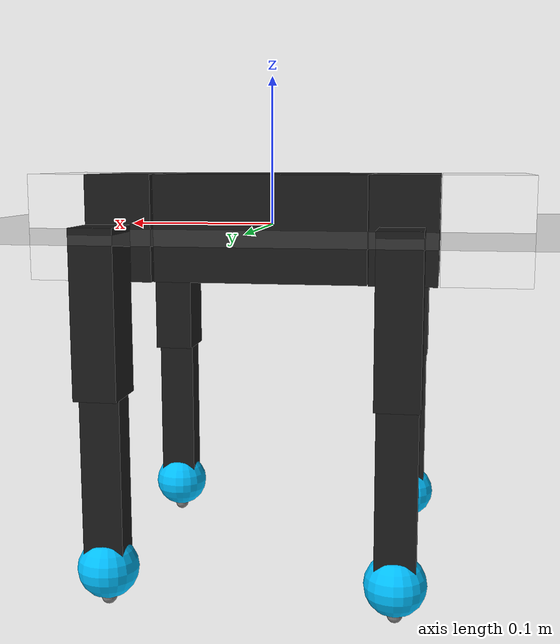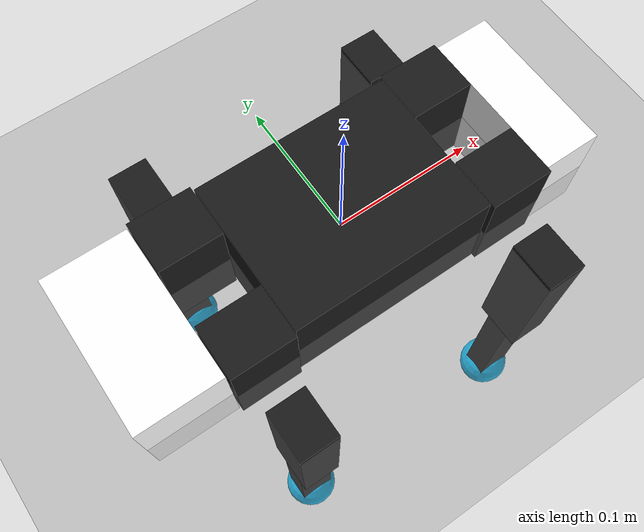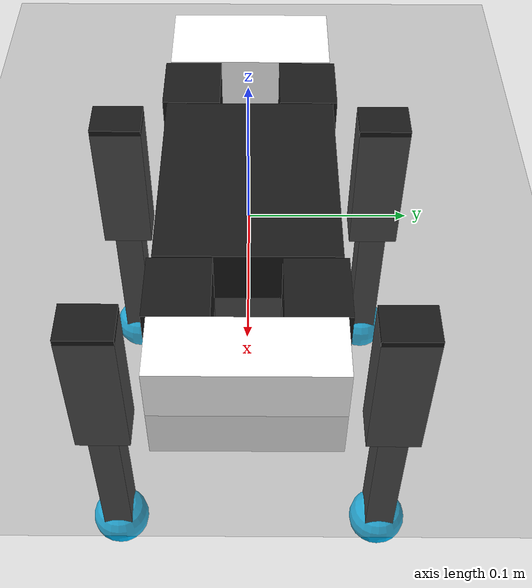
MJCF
<!-- Generated by simulation/generate_scenes.py from app/static/spot_micro.urdf.xacro; do not edit.
     Servo stiffness and torque, joint damping and replaced inertia tensors are estimates. -->
<mujoco model="spot_micro_rviz">
  <compiler angle="radian" meshdir="meshes/"/>

  <worldbody>
    <geom name="floor" size="0 0 0.05" type="plane"/>
    <body name="base_link">
      <inertial pos="0 0 0" mass="2.8" diaginertia="0.007168 0.007168 0.007168"/>
      <joint name="root" type="free"/>
      <geom size="0.07 0.055 0.035" type="box" contype="0" rgba="0.1 0.1 0.1 1"/>
      <site name="imu" pos="0 0 0"/>
      <body name="rear_link">
        <inertial pos="0 0 0" mass="0.2" diaginertia="7.2e-05 7.2e-05 7.2e-05"/>
        <geom size="0.02 0.055 0.035" pos="0.135 0 0" type="box" contype="0" rgba="1 1 1 1"/>
      </body>
      <body name="front_link">
        <inertial pos="0 0 0" mass="0.2" diaginertia="7.2e-05 7.2e-05 7.2e-05"/>
        <geom size="0.029 0.055 0.035" pos="-0.145 0 0" type="box" contype="0" rgba="1 1 1 1"/>
      </body>
      <body name="front_left_shoulder_link" pos="0.093 0.039 0">
        <inertial pos="0 0 0" mass="0.1" diaginertia="3.6e-05 3.6e-05 3.6e-05"/>
        <joint name="front_left_shoulder" pos="0 0 0" axis="1 0 0" range="-0.548 0.548" actuatorfrcrange="-1000 1000" armature="0.01" damping="0.1" frictionloss="0.5"/>
        <geom size="0.022 0.019 0.035" type="box" contype="0" rgba="0.1 0.1 0.1 1"/>
        <body name="front_left_leg_link" pos="0 0.055 0">
          <inertial pos="0 0 0" mass="0.15" diaginertia="5.4e-05 5.4e-05 5.4e-05"/>
          <joint name="front_left_leg" pos="0 0 0" axis="0 1 0" range="-2.666 1.548" actuatorfrcrange="-1000 1000" armature="0.01" damping="0.1"/>
          <geom size="0.014 0.018 0.05375" pos="0 0 -0.05" type="box" contype="0" rgba="0.1 0.1 0.1 1"/>
          <body name="front_left_leg_link_cover"/>
          <body name="front_left_foot_link" pos="0 0 -0.1075">
            <inertial pos="0 0 0" mass="0.1" diaginertia="3.6e-05 3.6e-05 3.6e-05"/>
            <joint name="front_left_foot" pos="0 0 0" axis="0 1 0" range="-2.6 0.1" actuatorfrcrange="-1000 1000" armature="0.01" damping="0.1" frictionloss="0.5"/>
            <geom size="0.013 0.01 0.065" pos="0 0 -0.05" type="box" contype="0" rgba="0.1 0.1 0.1 1"/>
            <body name="front_left_toe_link" pos="0 0 -0.13">
              <inertial pos="0 0 0" mass="0.05" diaginertia="1.8e-05 1.8e-05 1.8e-05"/>
              <geom size="0.02" pos="0 0 0.02" contype="0" rgba="0 0.75 1 1"/>
              <site name="foot_fl" pos="0 0 0"/>
            </body>
          </body>
        </body>
      </body>
      <body name="front_right_shoulder_link" pos="0.093 -0.039 0">
        <inertial pos="0 0 0" mass="0.1" diaginertia="3.6e-05 3.6e-05 3.6e-05"/>
        <joint name="front_right_shoulder" pos="0 0 0" axis="1 0 0" range="-0.548 0.548" actuatorfrcrange="-1000 1000" armature="0.01" damping="0.1" frictionloss="0.5"/>
        <geom size="0.022 0.019 0.035" type="box" contype="0" rgba="0.1 0.1 0.1 1"/>
        <body name="front_right_leg_link" pos="0 -0.055 0">
          <inertial pos="0 0 0" mass="0.15" diaginertia="5.4e-05 5.4e-05 5.4e-05"/>
          <joint name="front_right_leg" pos="0 0 0" axis="0 1 0" range="-2.666 1.548" actuatorfrcrange="-1000 1000" armature="0.01" damping="0.1"/>
          <geom size="0.014 0.018 0.05375" pos="0 0 -0.05" type="box" contype="0" rgba="0.1 0.1 0.1 1"/>
          <body name="front_right_leg_link_cover"/>
          <body name="front_right_foot_link" pos="0 0 -0.1075">
            <inertial pos="0 0 0" mass="0.1" diaginertia="3.6e-05 3.6e-05 3.6e-05"/>
            <joint name="front_right_foot" pos="0 0 0" axis="0 1 0" range="-2.6 0.1" actuatorfrcrange="-1000 1000" armature="0.01" damping="0.1" frictionloss="0.5"/>
            <geom size="0.013 0.01 0.065" pos="0 0 -0.05" type="box" contype="0" rgba="0.1 0.1 0.1 1"/>
            <body name="front_right_toe_link" pos="0 0 -0.13">
              <inertial pos="0 0 0" mass="0.05" diaginertia="1.8e-05 1.8e-05 1.8e-05"/>
              <geom size="0.02" pos="0 0 0.02" contype="0" rgba="0 0.75 1 1"/>
              <site name="foot_fr" pos="0 0 0"/>
            </body>
          </body>
        </body>
      </body>
      <body name="rear_left_shoulder_link" pos="-0.093 0.039 0">
        <inertial pos="0 0 0" mass="0.1" diaginertia="3.6e-05 3.6e-05 3.6e-05"/>
        <joint name="rear_left_shoulder" pos="0 0 0" axis="1 0 0" range="-0.548 0.548" actuatorfrcrange="-1000 1000" armature="0.01" damping="0.1" frictionloss="0.5"/>
        <geom size="0.022 0.019 0.035" type="box" contype="0" rgba="0.1 0.1 0.1 1"/>
        <body name="rear_left_leg_link" pos="0 0.055 0">
          <inertial pos="0 0 0" mass="0.15" diaginertia="5.4e-05 5.4e-05 5.4e-05"/>
          <joint name="rear_left_leg" pos="0 0 0" axis="0 1 0" range="-2.666 1.548" actuatorfrcrange="-1000 1000" armature="0.01" damping="0.1"/>
          <geom size="0.014 0.018 0.05375" pos="0 0 -0.05" type="box" contype="0" rgba="0.1 0.1 0.1 1"/>
          <body name="rear_left_leg_link_cover"/>
          <body name="rear_left_foot_link" pos="0 0 -0.1075">
            <inertial pos="0 0 0" mass="0.1" diaginertia="3.6e-05 3.6e-05 3.6e-05"/>
            <joint name="rear_left_foot" pos="0 0 0" axis="0 1 0" range="-2.6 0.1" actuatorfrcrange="-1000 1000" armature="0.01" damping="0.1" frictionloss="0.5"/>
            <geom size="0.013 0.01 0.065" pos="0 0 -0.05" type="box" contype="0" rgba="0.1 0.1 0.1 1"/>
            <body name="rear_left_toe_link" pos="0 0 -0.13">
              <inertial pos="0 0 0" mass="0.05" diaginertia="1.8e-05 1.8e-05 1.8e-05"/>
              <geom size="0.02" pos="0 0 0.02" contype="0" rgba="0 0.75 1 1"/>
              <site name="foot_rl" pos="0 0 0"/>
            </body>
          </body>
        </body>
      </body>
      <body name="rear_right_shoulder_link" pos="-0.093 -0.039 0">
        <inertial pos="0 0 0" mass="0.1" diaginertia="3.6e-05 3.6e-05 3.6e-05"/>
        <joint name="rear_right_shoulder" pos="0 0 0" axis="1 0 0" range="-0.548 0.548" actuatorfrcrange="-1000 1000" armature="0.01" damping="0.1" frictionloss="0.5"/>
        <geom size="0.022 0.019 0.035" type="box" contype="0" rgba="0.1 0.1 0.1 1"/>
        <body name="rear_right_leg_link" pos="0 -0.055 0">
          <inertial pos="0 0 0" mass="0.15" diaginertia="5.4e-05 5.4e-05 5.4e-05"/>
          <joint name="rear_right_leg" pos="0 0 0" axis="0 1 0" range="-2.666 1.548" actuatorfrcrange="-1000 1000" armature="0.01" damping="0.1"/>
          <geom size="0.014 0.018 0.05375" pos="0 0 -0.05" type="box" contype="0" rgba="0.1 0.1 0.1 1"/>
          <body name="rear_right_leg_link_cover"/>
          <body name="rear_right_foot_link" pos="0 0 -0.1075">
            <inertial pos="0 0 0" mass="0.1" diaginertia="3.6e-05 3.6e-05 3.6e-05"/>
            <joint name="rear_right_foot" pos="0 0 0" axis="0 1 0" range="-2.6 0.1" actuatorfrcrange="-1000 1000" armature="0.01" damping="0.1" frictionloss="0.5"/>
            <geom size="0.013 0.01 0.065" pos="0 0 -0.05" type="box" contype="0" rgba="0.1 0.1 0.1 1"/>
            <body name="rear_right_toe_link" pos="0 0 -0.13">
              <inertial pos="0 0 0" mass="0.05" diaginertia="1.8e-05 1.8e-05 1.8e-05"/>
              <geom size="0.02" pos="0 0 0.02" contype="0" rgba="0 0.75 1 1"/>
              <site name="foot_rr" pos="0 0 0"/>
            </body>
          </body>
        </body>
      </body>
    </body>
  </worldbody>

  <actuator>
    <general name="front_left_shoulder" joint="front_left_shoulder" forcelimited="true" forcerange="-3 3" biastype="affine" gainprm="30" biasprm="0 -30 1"/>
    <general name="front_left_leg" joint="front_left_leg" forcelimited="true" forcerange="-3 3" biastype="affine" gainprm="30" biasprm="0 -30 1"/>
    <general name="front_left_foot" joint="front_left_foot" forcelimited="true" forcerange="-3 3" biastype="affine" gainprm="30" biasprm="0 -30 1"/>
    <general name="front_right_shoulder" joint="front_right_shoulder" forcelimited="true" forcerange="-3 3" biastype="affine" gainprm="30" biasprm="0 -30 1"/>
    <general name="front_right_leg" joint="front_right_leg" forcelimited="true" forcerange="-3 3" biastype="affine" gainprm="30" biasprm="0 -30 1"/>
    <general name="front_right_foot" joint="front_right_foot" forcelimited="true" forcerange="-3 3" biastype="affine" gainprm="30" biasprm="0 -30 1"/>
    <general name="rear_left_shoulder" joint="rear_left_shoulder" forcelimited="true" forcerange="-3 3" biastype="affine" gainprm="30" biasprm="0 -30 1"/>
    <general name="rear_left_leg" joint="rear_left_leg" forcelimited="true" forcerange="-3 3" biastype="affine" gainprm="30" biasprm="0 -30 1"/>
    <general name="rear_left_foot" joint="rear_left_foot" forcelimited="true" forcerange="-3 3" biastype="affine" gainprm="30" biasprm="0 -30 1"/>
    <general name="rear_right_shoulder" joint="rear_right_shoulder" forcelimited="true" forcerange="-3 3" biastype="affine" gainprm="30" biasprm="0 -30 1"/>
    <general name="rear_right_leg" joint="rear_right_leg" forcelimited="true" forcerange="-3 3" biastype="affine" gainprm="30" biasprm="0 -30 1"/>
    <general name="rear_right_foot" joint="rear_right_foot" forcelimited="true" forcerange="-3 3" biastype="affine" gainprm="30" biasprm="0 -30 1"/>
  </actuator>
</mujoco>
